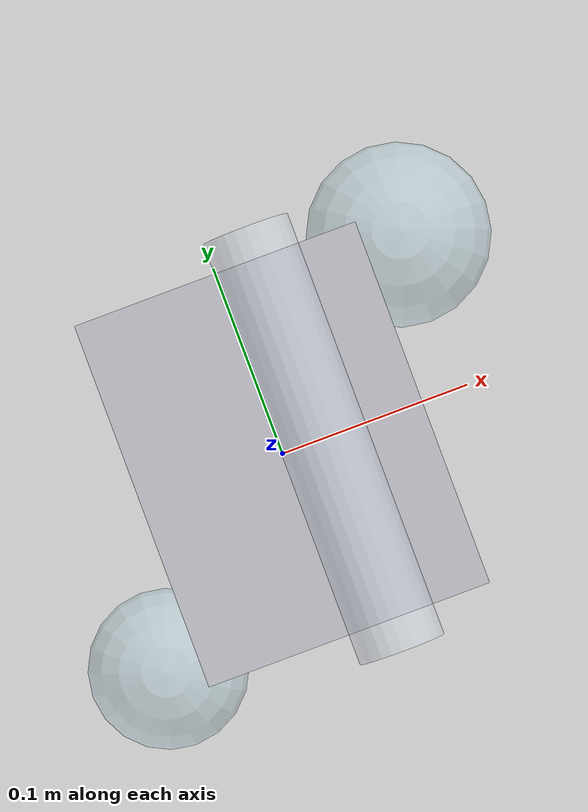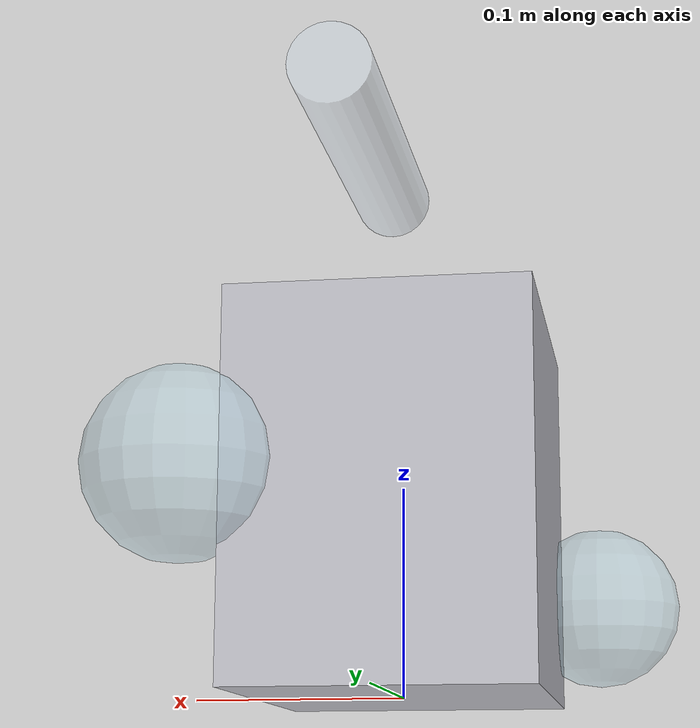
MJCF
<?xml version="1.0" encoding="utf-8"?>
<mujoco model="rotary_evaporator">
  <compiler angle="radian" autolimits="true"/>
  <default>
    <default class="body"><geom contype="1" conaffinity="1"/></default>
  </default>
  <worldbody>
    <body name="base">
      <geom type="box" size="0.07 0.09 0.09" pos="0 0 0.09" rgba="0.75 0.75 0.78 1" class="body"/>
      <geom type="cylinder" size="0.02 0.10" pos="0.02 0 0.28" rgba="0.85 0.9 0.95 0.4" class="body" quat="0.7071068 0.7071068 0 0"/>
      <geom type="sphere" size="0.04" pos="-0.09 -0.08 0.05" rgba="0.7 0.85 0.9 0.4" class="body"/>
      <body name="evap_flask" pos="0.09 0.08 0.10">
        <joint name="evap_flask_joint" type="hinge" axis="0 0 1" range="-3.14159 3.14159" damping="0.4" frictionloss="0.2"/>
  <geom type="sphere" size="0.045" pos="0 0 0" rgba="0.7 0.85 0.9 0.4" class="body"/>
      </body>
    </body>
  </worldbody>
</mujoco>
